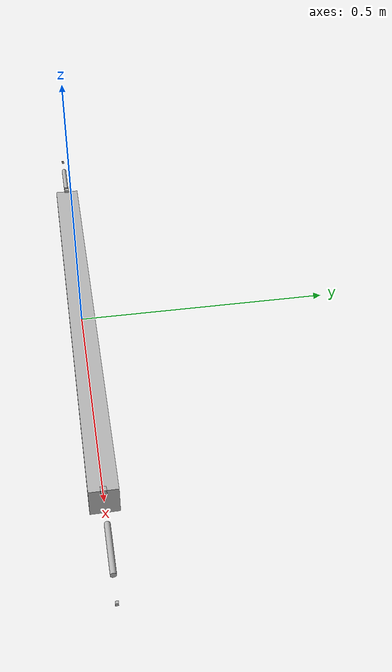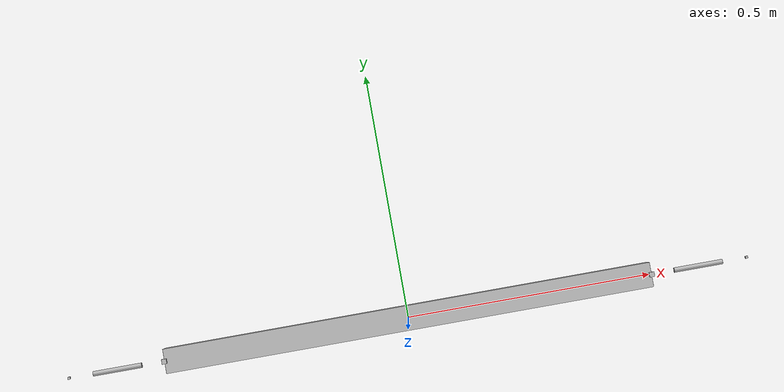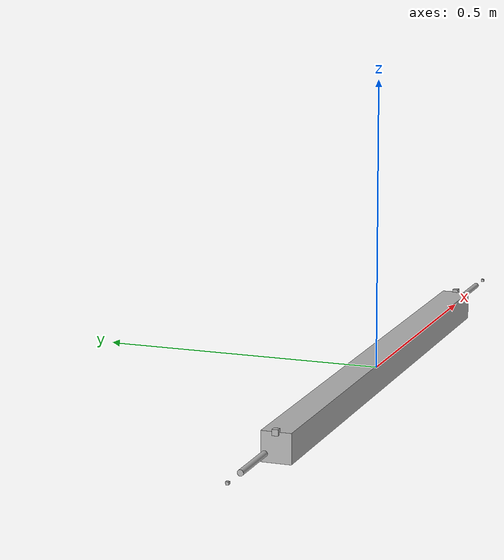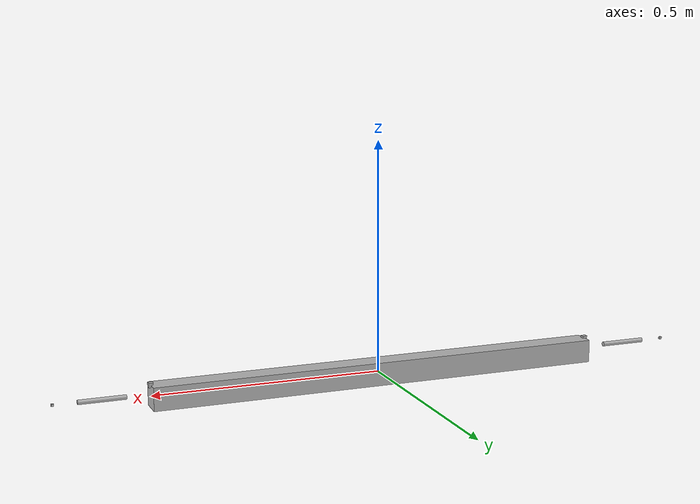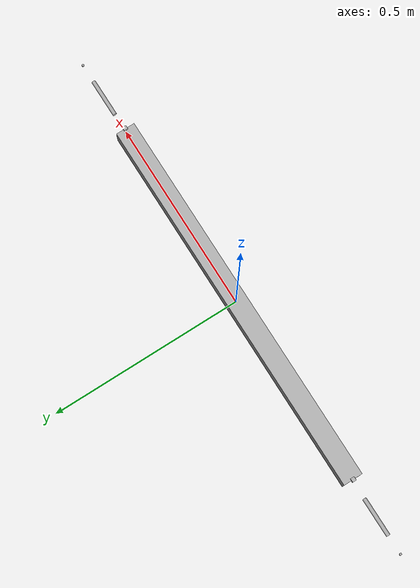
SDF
<?xml version='1.0'?>
<sdf version='1.5'>
  <model name="payload_rec">
        <static>false</static>

<link name="payload_rec">
      <pose>0 0 0 0 0 0</pose>
	<sensor type="imu" name="payload_imu_rec">
		<always_on>true</always_on>
		<update_rate>200</update_rate>
	</sensor>
        <inertial>
          <inertia>
            <ixx>0.0008330</ixx>
            <ixy>0</ixy>
            <ixz>0</ixz>
            <iyy>0.0370</iyy>
            <iyz>0</iyz>
            <izz>0.0370</izz>
          </inertia>
          <mass>0.5</mass>
        </inertial>

        <collision name="my_collision">
            <geometry>
             <box>
             <size>1.0 0.05 0.05</size>
             </box>
            </geometry>

        </collision>

        <visual name="my_visual">
            <geometry>
             <box>
             <size>1.0 0.05 0.05</size>
             </box>
            </geometry>
        </visual>
    </link>
<link name="payload_rec_g_box">
      <pose>-0.50 0 0.025 0 0 0</pose>
        <inertial>
          <inertia>
            <ixx>0.000004165</ixx>
            <ixy>0</ixy>
            <ixz>0</ixz>
            <iyy>0.000185</iyy>
            <iyz>0</iyz>
            <izz>0.000185</izz>
          </inertia>
          <mass>0.0001</mass>
        </inertial>

        <collision name="payload_rec_g_box_collision">
            <geometry>
             <box>
             <size>0.01 0.01 0.01</size>
             </box>
            </geometry>

        </collision>

        <visual name="payload_rec_g_box_visual">
            <geometry>
             <box>
             <size>0.01 0.01 0.01</size>
             </box>
            </geometry>
        </visual>

<sensor name="IMU2" type="imu">
   <always_on>true</always_on>
   <plugin name="IMU2_plugin" filename="libgazebo_ros_imu_sensor.so">
     <topicName>/IMU2</topicName>
     <updateRateHZ>50</updateRateHZ>
     <frameName>payload_rec_g_box</frameName>
   </plugin>
 </sensor>
    </link>

<joint name="payload_g_joint" type="fixed">
      <parent>payload::payload_rec</parent>
      <child>payload::payload_rec_g_box</child>
      <pose>-0.00 0.0 0.0 0 0.0 0.0</pose>
    </joint>

<link name="payload_rec_g1_box">
      <pose>0.50 0.0  0.025 0 0 0</pose>
        <inertial>
          <inertia>
            <ixx>0.000004165</ixx>
            <ixy>0</ixy>
            <ixz>0</ixz>
            <iyy>0.000185</iyy>
            <iyz>0</iyz>
            <izz>0.000185</izz>
          </inertia>
          <mass>0.0001</mass>
        </inertial>

        <collision name="payload_rec_g1_box_collision">
            <geometry>
             <box>
             <size>0.01 0.01 0.01</size>
             </box>
            </geometry>

        </collision>

        <visual name="payload_rec_g1_box_visual">
            <geometry>
             <box>
             <size>0.01 0.01 0.01</size>
             </box>
            </geometry>
        </visual>

        <sensor name="IMU1" type="imu">

           <plugin name="IMU1_plugin" filename="libgazebo_ros_imu_sensor.so">
            <always_on>true</always_on>
             <topicName>/IMU1</topicName>
             <updateRateHZ>50</updateRateHZ>
             <frameName>payload_rec_g1_box</frameName>
           </plugin>
         </sensor>
    </link>

<joint name="payload_g1_joint" type="fixed">
      <parent>payload::payload_rec</parent>
      <child>payload::payload_rec_g1_box</child>
      <pose>-0.00 0.0 0.0 0 0.0 0.0</pose>
    </joint>
<!-- link1-->
<link name="payload_link1">
        <pose>-0.60 0.0  0.005 0 1.57 0</pose>
	<gravity>1</gravity>
		 <inertial>
          <inertia>
            <ixx>0.005</ixx>
            <ixy>0</ixy>
            <ixz>0</ixz>
            <iyy>0.005</iyy>
            <iyz>0</iyz>
            <izz>0.00001</izz>
          </inertia>
          <mass>0.03</mass>
        </inertial>

        <collision name="collision_payload_link">
          <geometry>
            <cylinder>
              <radius>0.0005</radius>
              <length>0.1</length>
            </cylinder>
          </geometry>
	  <surface>
		<contact>
	    <collide_without_contact>true</collide_without_contact>
		</contact>
	  </surface>

        </collision>

        <visual name="visual_payload_link">
          <geometry>
            <cylinder>
              <radius>0.005</radius>
              <length>0.1</length>
            </cylinder>
          </geometry>
        </visual>
      </link>
<link name="payload_link1_box">
        <pose>-0.70 0.0  0.005 0.0 0  0</pose>
	<gravity>1</gravity>
		 <inertial>
          <inertia>
            <ixx>0.005</ixx>
            <ixy>0</ixy>
            <ixz>0</ixz>
            <iyy>0.005</iyy>
            <iyz>0</iyz>
            <izz>0.00001</izz>
          </inertia>
          <mass>0.03</mass>
        </inertial>

        <collision name="collision_payload_link">
          <geometry>
           <box>
             <size>0.005 0.005 0.005</size>
             </box>
          </geometry>

        </collision>

        <visual name="visual_payload_link">
          <geometry>
           <box>
             <size>0.005 0.005 0.005</size>
             </box>
          </geometry>
        </visual>
      </link>
<joint name="payload_link_joint1" type="revolute2">
      <parent>payload::payload_rec</parent>
      <child>payload::payload_link1</child>
      <pose>-0.00 0.0 0.1 0 0.0 0.0</pose>

      <axis>
        <xyz>1 0 0</xyz>
		<dynamics>
                <damping> 5.0 </damping>
                <spring_stiffness> 0.05 </spring_stiffness>
		</dynamics>

      </axis>

      <axis2>
        <xyz>0 1 0</xyz>
		<dynamics>
                <damping> 5.0 </damping>
                <spring_stiffness> 0.05 </spring_stiffness>
		</dynamics>

      </axis2>

	 <physics>
	 <ode>
	 <provide_feedback>true</provide_feedback>
	 			<implicit_spring_damper>true</implicit_spring_damper>
	 </ode>
	 </physics>
	 <sensor name="force_torque" type="force_torque">
      <update_rate>200</update_rate>
	  <always_on>true</always_on>
     </sensor>
    </joint>

	<plugin name="ft_sensor" filename="libgazebo_ros_ft_sensor.so">
		<always_on>true</always_on>
            <updateRate>200.0</updateRate>
            <topicName>/ft_sensor2_topic</topicName>
	<jointName>payload_link_joint1</jointName>
        </plugin>
<joint name="payload_link_joint2" type="fixed">
      <parent>payload::payload_link1_box</parent>
      <child>payload::payload_link1</child>
      <pose>-0.00 0.0 -0.1 0 0.0 0.0</pose>
    </joint>
<!-- link2 -->
<link name="payload_link2">
        <pose>0.60 0.0 0.005 0.0 -1.57 0</pose>
	<gravity>1</gravity>
		 <inertial>
          <inertia>
            <ixx>0.005</ixx>
            <ixy>0</ixy>
            <ixz>0</ixz>
            <iyy>0.005</iyy>
            <iyz>0</iyz>
            <izz>0.00001</izz>
          </inertia>
          <mass>0.03</mass>
        </inertial>

        <collision name="collision_payload_link2">
          <geometry>
            <cylinder>
              <radius>0.0005</radius>
              <length>0.1</length>
            </cylinder>
          </geometry>

	  <surface>
		<contact>
	    <collide_without_contact>true</collide_without_contact>
		</contact>
	  </surface>
        </collision>

        <visual name="visual_payload_link2">
          <geometry>
            <cylinder>
              <radius>0.005</radius>
              <length>0.1</length>
            </cylinder>
          </geometry>
        </visual>
      </link>
<link name="payload_link2_box">
        <pose>0.70 0.0  0.005 0 0.0 0</pose>
	<gravity>1</gravity>
		 <inertial>
          <inertia>
            <ixx>0.005</ixx>
            <ixy>0</ixy>
            <ixz>0</ixz>
            <iyy>0.005</iyy>
            <iyz>0</iyz>
            <izz>0.00001</izz>
          </inertia>
          <mass>0.03</mass>
        </inertial>

        <collision name="collision_payload_link3">
          <geometry>
           <box>
             <size>0.005 0.005 0.005</size>
             </box>
          </geometry>

        </collision>

        <visual name="visual_payload_link3">
          <geometry>
           <box>
             <size>0.005 0.005 0.005</size>
             </box>
          </geometry>
        </visual>
      </link>
<joint name="payload_link_joint3" type="revolute2">
      <parent>payload::payload_rec</parent>
      <child>payload::payload_link2</child>
      <pose>-0.00 0.0 0.1 0 0.0 0.0</pose>

      <axis>
        <xyz>1 0 0</xyz>
		<dynamics>
                <damping> 5.0 </damping>
                <spring_stiffness> 0.05 </spring_stiffness>
		</dynamics>

      </axis>

      <axis2>
        <xyz>0 1 0</xyz>
		<dynamics>
                <damping> 5.0 </damping>
                <spring_stiffness> 0.05 </spring_stiffness>
		</dynamics>

      </axis2>

	 <physics>
	 <ode>
	 <provide_feedback>true</provide_feedback>
	 			<implicit_spring_damper>true</implicit_spring_damper>
	 </ode>
	 </physics>
	 <sensor name="force_torque" type="force_torque">
      <update_rate>200</update_rate>
	  <always_on>true</always_on>
     </sensor>
    </joint>
	<plugin name="ft_sensor" filename="libgazebo_ros_ft_sensor.so">
		<always_on>true</always_on>
            <updateRate>200.0</updateRate>
            <topicName>/ft_sensor1_topic</topicName>
	<jointName>payload_link_joint3</jointName>
        </plugin>
<joint name="payload_link_joint4" type="fixed">
      <parent>payload::payload_link2_box</parent>
      <child>payload::payload_link2</child>
      <pose>-0.00 0.0 -0.1 0 0.0 0.0</pose>
    </joint>

  </model>
</sdf>
